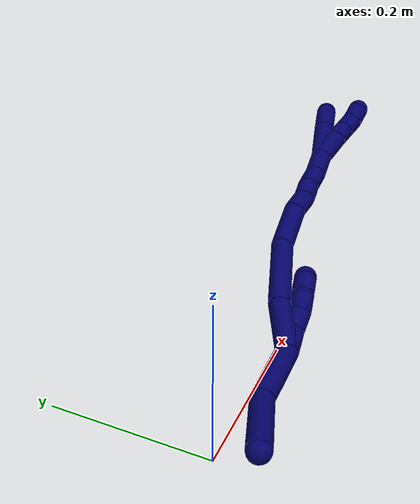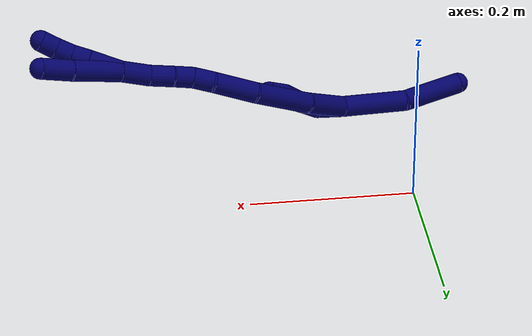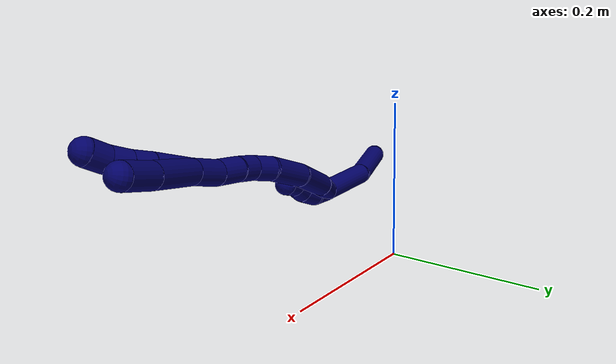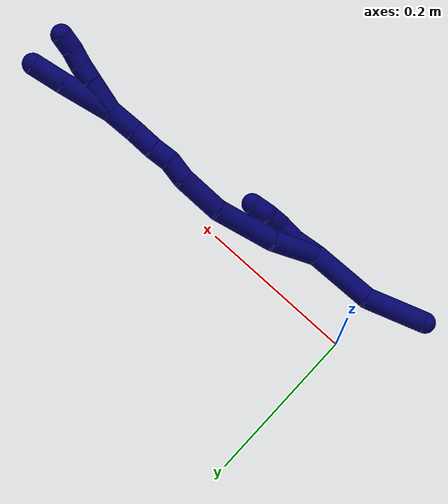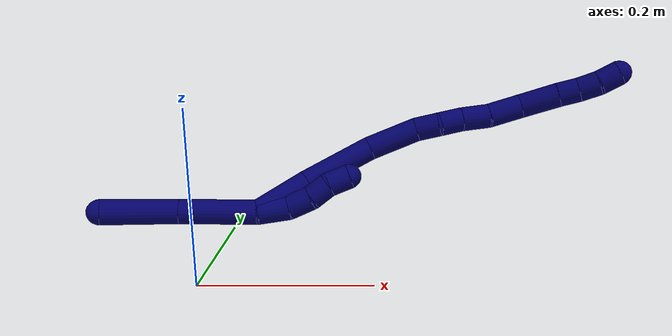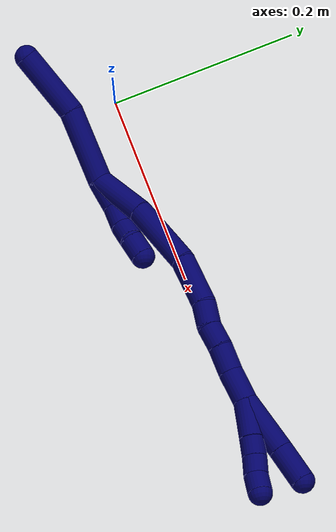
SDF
<sdf version="1.7">
 <world name="default">
  <model name="7">
   <static>0</static>
   <link name="7">
    <collision name="collision-cylinder-e_1_2_8">
     <pose>-0.015561 0.003022 -0.035592 -3.05689 -0.410855 2.7403</pose>
     <geometry><cylinder><radius>0.0125</radius><length>0.077925</length></cylinder></geometry>
     <surface>
      <friction><ode><mu>1.16</mu><mu2>1.16</mu2><slip1>0</slip1><slip2>0</slip2></ode></friction>
      <contact><ode><kp>1e+06</kp><kd>1</kd><max_vel>0</max_vel><min_depth>0.001</min_depth></ode></contact>
     </surface>
    </collision>
    <visual name="visual-cylinder-e_1_2_8">
     <pose>-0.015561 0.003022 -0.035592 -3.05689 -0.410855 2.7403</pose>
     <geometry><cylinder><radius>0.0125</radius><length>0.077925</length></cylinder></geometry>
     <material><ambient>0.003922 0 0.403922 1</ambient></material>
    </visual>
    <collision name="collision-cylinder-e_2_8_6">
     <pose>-0.053318 0.002907 -0.099401 3.03086 -0.663536 -2.82258</pose>
     <geometry><cylinder><radius>0.0125</radius><length>0.072075</length></cylinder></geometry>
     <surface>
      <friction><ode><mu>1.16</mu><mu2>1.16</mu2><slip1>0</slip1><slip2>0</slip2></ode></friction>
      <contact><ode><kp>1e+06</kp><kd>1</kd><max_vel>0</max_vel><min_depth>0.001</min_depth></ode></contact>
     </surface>
    </collision>
    <visual name="visual-cylinder-e_2_8_6">
     <pose>-0.053318 0.002907 -0.099401 3.03086 -0.663536 -2.82258</pose>
     <geometry><cylinder><radius>0.0125</radius><length>0.072075</length></cylinder></geometry>
     <material><ambient>0.003922 0 0.403922 1</ambient></material>
    </visual>
    <collision name="collision-cylinder-e_1_2_9">
     <pose>0.006109 0.001605 0.014435 -0.110713 0.398136 -0.022357</pose>
     <geometry><cylinder><radius>0.0125</radius><length>0.031512</length></cylinder></geometry>
     <surface>
      <friction><ode><mu>1.16</mu><mu2>1.16</mu2><slip1>0</slip1><slip2>0</slip2></ode></friction>
      <contact><ode><kp>1e+06</kp><kd>1</kd><max_vel>0</max_vel><min_depth>0.001</min_depth></ode></contact>
     </surface>
    </collision>
    <visual name="visual-cylinder-e_1_2_9">
     <pose>0.006109 0.001605 0.014435 -0.110713 0.398136 -0.022357</pose>
     <geometry><cylinder><radius>0.0125</radius><length>0.031512</length></cylinder></geometry>
     <material><ambient>0.003922 0 0.403922 1</ambient></material>
    </visual>
    <collision name="collision-cylinder-e_2_9_10">
     <pose>0.013101 0.00593 0.041145 -0.218139 0.070176 -0.007688</pose>
     <geometry><cylinder><radius>0.0125</radius><length>0.02521</length></cylinder></geometry>
     <surface>
      <friction><ode><mu>1.16</mu><mu2>1.16</mu2><slip1>0</slip1><slip2>0</slip2></ode></friction>
      <contact><ode><kp>1e+06</kp><kd>1</kd><max_vel>0</max_vel><min_depth>0.001</min_depth></ode></contact>
     </surface>
    </collision>
    <visual name="visual-cylinder-e_2_9_10">
     <pose>0.013101 0.00593 0.041145 -0.218139 0.070176 -0.007688</pose>
     <geometry><cylinder><radius>0.0125</radius><length>0.02521</length></cylinder></geometry>
     <material><ambient>0.003922 0 0.403922 1</ambient></material>
    </visual>
    <collision name="collision-cylinder-e_3_10_11">
     <pose>0.01397 0.013317 0.062802 -0.461463 -0.001438 0.000338</pose>
     <geometry><cylinder><radius>0.0125</radius><length>0.020954</length></cylinder></geometry>
     <surface>
      <friction><ode><mu>1.16</mu><mu2>1.16</mu2><slip1>0</slip1><slip2>0</slip2></ode></friction>
      <contact><ode><kp>1e+06</kp><kd>1</kd><max_vel>0</max_vel><min_depth>0.001</min_depth></ode></contact>
     </surface>
    </collision>
    <visual name="visual-cylinder-e_3_10_11">
     <pose>0.01397 0.013317 0.062802 -0.461463 -0.001438 0.000338</pose>
     <geometry><cylinder><radius>0.0125</radius><length>0.020954</length></cylinder></geometry>
     <material><ambient>0.003922 0 0.403922 1</ambient></material>
    </visual>
    <collision name="collision-cylinder-e_4_11_5">
     <pose>0.016741 0.021252 0.082486 -0.30733 0.252255 -0.039274</pose>
     <geometry><cylinder><radius>0.0125</radius><length>0.022324</length></cylinder></geometry>
     <surface>
      <friction><ode><mu>1.16</mu><mu2>1.16</mu2><slip1>0</slip1><slip2>0</slip2></ode></friction>
      <contact><ode><kp>1e+06</kp><kd>1</kd><max_vel>0</max_vel><min_depth>0.001</min_depth></ode></contact>
     </surface>
    </collision>
    <visual name="visual-cylinder-e_4_11_5">
     <pose>0.016741 0.021252 0.082486 -0.30733 0.252255 -0.039274</pose>
     <geometry><cylinder><radius>0.0125</radius><length>0.022324</length></cylinder></geometry>
     <material><ambient>0.003922 0 0.403922 1</ambient></material>
    </visual>
    <collision name="collision-cylinder-e_1_2_12">
     <pose>0.009488 0.015807 0.022715 -0.607967 0.330282 -0.104469</pose>
     <geometry><cylinder><radius>0.0125</radius><length>0.05851</length></cylinder></geometry>
     <surface>
      <friction><ode><mu>1.16</mu><mu2>1.16</mu2><slip1>0</slip1><slip2>0</slip2></ode></friction>
      <contact><ode><kp>1e+06</kp><kd>1</kd><max_vel>0</max_vel><min_depth>0.001</min_depth></ode></contact>
     </surface>
    </collision>
    <visual name="visual-cylinder-e_1_2_12">
     <pose>0.009488 0.015807 0.022715 -0.607967 0.330282 -0.104469</pose>
     <geometry><cylinder><radius>0.0125</radius><length>0.05851</length></cylinder></geometry>
     <material><ambient>0.003922 0 0.403922 1</ambient></material>
    </visual>
    <collision name="collision-cylinder-e_2_12_13">
     <pose>0.027935 0.047567 0.07865 -0.447672 0.238489 -0.054537</pose>
     <geometry><cylinder><radius>0.0125</radius><length>0.07585</length></cylinder></geometry>
     <surface>
      <friction><ode><mu>1.16</mu><mu2>1.16</mu2><slip1>0</slip1><slip2>0</slip2></ode></friction>
      <contact><ode><kp>1e+06</kp><kd>1</kd><max_vel>0</max_vel><min_depth>0.001</min_depth></ode></contact>
     </surface>
    </collision>
    <visual name="visual-cylinder-e_2_12_13">
     <pose>0.027935 0.047567 0.07865 -0.447672 0.238489 -0.054537</pose>
     <geometry><cylinder><radius>0.0125</radius><length>0.07585</length></cylinder></geometry>
     <material><ambient>0.003922 0 0.403922 1</ambient></material>
    </visual>
    <collision name="collision-cylinder-e_3_13_14">
     <pose>0.040699 0.069464 0.137733 -0.225947 0.142426 -0.016186</pose>
     <geometry><cylinder><radius>0.0125</radius><length>0.053618</length></cylinder></geometry>
     <surface>
      <friction><ode><mu>1.16</mu><mu2>1.16</mu2><slip1>0</slip1><slip2>0</slip2></ode></friction>
      <contact><ode><kp>1e+06</kp><kd>1</kd><max_vel>0</max_vel><min_depth>0.001</min_depth></ode></contact>
     </surface>
    </collision>
    <visual name="visual-cylinder-e_3_13_14">
     <pose>0.040699 0.069464 0.137733 -0.225947 0.142426 -0.016186</pose>
     <geometry><cylinder><radius>0.0125</radius><length>0.053618</length></cylinder></geometry>
     <material><ambient>0.003922 0 0.403922 1</ambient></material>
    </visual>
    <collision name="collision-cylinder-e_4_14_15">
     <pose>0.04575 0.075178 0.175968 0.018618 0.100287 0.000934</pose>
     <geometry><cylinder><radius>0.0125</radius><length>0.024873</length></cylinder></geometry>
     <surface>
      <friction><ode><mu>1.16</mu><mu2>1.16</mu2><slip1>0</slip1><slip2>0</slip2></ode></friction>
      <contact><ode><kp>1e+06</kp><kd>1</kd><max_vel>0</max_vel><min_depth>0.001</min_depth></ode></contact>
     </surface>
    </collision>
    <visual name="visual-cylinder-e_4_14_15">
     <pose>0.04575 0.075178 0.175968 0.018618 0.100287 0.000934</pose>
     <geometry><cylinder><radius>0.0125</radius><length>0.024873</length></cylinder></geometry>
     <material><ambient>0.003922 0 0.403922 1</ambient></material>
    </visual>
    <collision name="collision-cylinder-e_5_15_16">
     <pose>0.050641 0.076646 0.199499 -0.151041 0.31242 -0.023832</pose>
     <geometry><cylinder><radius>0.0125</radius><length>0.023723</length></cylinder></geometry>
     <surface>
      <friction><ode><mu>1.16</mu><mu2>1.16</mu2><slip1>0</slip1><slip2>0</slip2></ode></friction>
      <contact><ode><kp>1e+06</kp><kd>1</kd><max_vel>0</max_vel><min_depth>0.001</min_depth></ode></contact>
     </surface>
    </collision>
    <visual name="visual-cylinder-e_5_15_16">
     <pose>0.050641 0.076646 0.199499 -0.151041 0.31242 -0.023832</pose>
     <geometry><cylinder><radius>0.0125</radius><length>0.023723</length></cylinder></geometry>
     <material><ambient>0.003922 0 0.403922 1</ambient></material>
    </visual>
    <collision name="collision-cylinder-e_6_16_17">
     <pose>0.058455 0.07858 0.224274 -0.017243 0.297032 -0.00258</pose>
     <geometry><cylinder><radius>0.0125</radius><length>0.028484</length></cylinder></geometry>
     <surface>
      <friction><ode><mu>1.16</mu><mu2>1.16</mu2><slip1>0</slip1><slip2>0</slip2></ode></friction>
      <contact><ode><kp>1e+06</kp><kd>1</kd><max_vel>0</max_vel><min_depth>0.001</min_depth></ode></contact>
     </surface>
    </collision>
    <visual name="visual-cylinder-e_6_16_17">
     <pose>0.058455 0.07858 0.224274 -0.017243 0.297032 -0.00258</pose>
     <geometry><cylinder><radius>0.0125</radius><length>0.028484</length></cylinder></geometry>
     <material><ambient>0.003922 0 0.403922 1</ambient></material>
    </visual>
    <collision name="collision-cylinder-e_7_17_1">
     <pose>0.066615 0.08183 0.25463 -0.178236 0.230536 -0.02069</pose>
     <geometry><cylinder><radius>0.0125</radius><length>0.034942</length></cylinder></geometry>
     <surface>
      <friction><ode><mu>1.16</mu><mu2>1.16</mu2><slip1>0</slip1><slip2>0</slip2></ode></friction>
      <contact><ode><kp>1e+06</kp><kd>1</kd><max_vel>0</max_vel><min_depth>0.001</min_depth></ode></contact>
     </surface>
    </collision>
    <visual name="visual-cylinder-e_7_17_1">
     <pose>0.066615 0.08183 0.25463 -0.178236 0.230536 -0.02069</pose>
     <geometry><cylinder><radius>0.0125</radius><length>0.034942</length></cylinder></geometry>
     <material><ambient>0.003922 0 0.403922 1</ambient></material>
    </visual>
    <collision name="collision-cylinder-e_1_1_18">
     <pose>0.070516 0.084816 0.291113 0.001476 -0.004637 -3e-06</pose>
     <geometry><cylinder><radius>0.0125</radius><length>0.039489</length></cylinder></geometry>
     <surface>
      <friction><ode><mu>1.16</mu><mu2>1.16</mu2><slip1>0</slip1><slip2>0</slip2></ode></friction>
      <contact><ode><kp>1e+06</kp><kd>1</kd><max_vel>0</max_vel><min_depth>0.001</min_depth></ode></contact>
     </surface>
    </collision>
    <visual name="visual-cylinder-e_1_1_18">
     <pose>0.070516 0.084816 0.291113 0.001476 -0.004637 -3e-06</pose>
     <geometry><cylinder><radius>0.0125</radius><length>0.039489</length></cylinder></geometry>
     <material><ambient>0.003922 0 0.403922 1</ambient></material>
    </visual>
    <collision name="collision-cylinder-e_2_18_19">
     <pose>0.07065 0.084337 0.320946 0.044629 0.022329 0.000498</pose>
     <geometry><cylinder><radius>0.0125</radius><length>0.020202</length></cylinder></geometry>
     <surface>
      <friction><ode><mu>1.16</mu><mu2>1.16</mu2><slip1>0</slip1><slip2>0</slip2></ode></friction>
      <contact><ode><kp>1e+06</kp><kd>1</kd><max_vel>0</max_vel><min_depth>0.001</min_depth></ode></contact>
     </surface>
    </collision>
    <visual name="visual-cylinder-e_2_18_19">
     <pose>0.07065 0.084337 0.320946 0.044629 0.022329 0.000498</pose>
     <geometry><cylinder><radius>0.0125</radius><length>0.020202</length></cylinder></geometry>
     <material><ambient>0.003922 0 0.403922 1</ambient></material>
    </visual>
    <collision name="collision-cylinder-e_3_19_20">
     <pose>0.069977 0.083688 0.341098 0.019701 -0.088992 -0.000877</pose>
     <geometry><cylinder><radius>0.0125</radius><length>0.020212</length></cylinder></geometry>
     <surface>
      <friction><ode><mu>1.16</mu><mu2>1.16</mu2><slip1>0</slip1><slip2>0</slip2></ode></friction>
      <contact><ode><kp>1e+06</kp><kd>1</kd><max_vel>0</max_vel><min_depth>0.001</min_depth></ode></contact>
     </surface>
    </collision>
    <visual name="visual-cylinder-e_3_19_20">
     <pose>0.069977 0.083688 0.341098 0.019701 -0.088992 -0.000877</pose>
     <geometry><cylinder><radius>0.0125</radius><length>0.020212</length></cylinder></geometry>
     <material><ambient>0.003922 0 0.403922 1</ambient></material>
    </visual>
    <collision name="collision-cylinder-e_4_20_4">
     <pose>0.068232 0.085252 0.361018 -0.176973 -0.084427 0.007495</pose>
     <geometry><cylinder><radius>0.0125</radius><length>0.020097</length></cylinder></geometry>
     <surface>
      <friction><ode><mu>1.16</mu><mu2>1.16</mu2><slip1>0</slip1><slip2>0</slip2></ode></friction>
      <contact><ode><kp>1e+06</kp><kd>1</kd><max_vel>0</max_vel><min_depth>0.001</min_depth></ode></contact>
     </surface>
    </collision>
    <visual name="visual-cylinder-e_4_20_4">
     <pose>0.068232 0.085252 0.361018 -0.176973 -0.084427 0.007495</pose>
     <geometry><cylinder><radius>0.0125</radius><length>0.020097</length></cylinder></geometry>
     <material><ambient>0.003922 0 0.403922 1</ambient></material>
    </visual>
    <collision name="collision-cylinder-e_1_1_21">
     <pose>0.081707 0.092506 0.298711 -0.273171 0.372638 -0.051805</pose>
     <geometry><cylinder><radius>0.0125</radius><length>0.060974</length></cylinder></geometry>
     <surface>
      <friction><ode><mu>1.16</mu><mu2>1.16</mu2><slip1>0</slip1><slip2>0</slip2></ode></friction>
      <contact><ode><kp>1e+06</kp><kd>1</kd><max_vel>0</max_vel><min_depth>0.001</min_depth></ode></contact>
     </surface>
    </collision>
    <visual name="visual-cylinder-e_1_1_21">
     <pose>0.081707 0.092506 0.298711 -0.273171 0.372638 -0.051805</pose>
     <geometry><cylinder><radius>0.0125</radius><length>0.060974</length></cylinder></geometry>
     <material><ambient>0.003922 0 0.403922 1</ambient></material>
    </visual>
    <collision name="collision-cylinder-e_2_21_3">
     <pose>0.099075 0.10526 0.343815 -0.27928 0.327042 -0.046373</pose>
     <geometry><cylinder><radius>0.0125</radius><length>0.039026</length></cylinder></geometry>
     <surface>
      <friction><ode><mu>1.16</mu><mu2>1.16</mu2><slip1>0</slip1><slip2>0</slip2></ode></friction>
      <contact><ode><kp>1e+06</kp><kd>1</kd><max_vel>0</max_vel><min_depth>0.001</min_depth></ode></contact>
     </surface>
    </collision>
    <visual name="visual-cylinder-e_2_21_3">
     <pose>0.099075 0.10526 0.343815 -0.27928 0.327042 -0.046373</pose>
     <geometry><cylinder><radius>0.0125</radius><length>0.039026</length></cylinder></geometry>
     <material><ambient>0.003922 0 0.403922 1</ambient></material>
    </visual>
    <collision name="collision-sphere-3">
     <pose>0.105343 0.110354 0.361578 0 -0 0</pose>
     <geometry><sphere><radius>0.0125</radius></sphere></geometry>
     <surface>
      <friction><ode><mu>1.16</mu><mu2>1.16</mu2><slip1>0</slip1><slip2>0</slip2></ode></friction>
      <contact><ode><kp>1e+06</kp><kd>1</kd><max_vel>0</max_vel><min_depth>0.001</min_depth></ode></contact>
     </surface>
    </collision>
    <visual name="visual-sphere-3">
     <pose>0.105343 0.110354 0.361578 0 -0 0</pose>
     <geometry><sphere><radius>0.0125</radius></sphere></geometry>
     <material><ambient>0.003922 0 0.403922 1</ambient></material>
    </visual>
    <collision name="collision-sphere-21">
     <pose>0.092806 0.100167 0.326053 0 -0 0</pose>
     <geometry><sphere><radius>0.0125</radius></sphere></geometry>
     <surface>
      <friction><ode><mu>1.16</mu><mu2>1.16</mu2><slip1>0</slip1><slip2>0</slip2></ode></friction>
      <contact><ode><kp>1e+06</kp><kd>1</kd><max_vel>0</max_vel><min_depth>0.001</min_depth></ode></contact>
     </surface>
    </collision>
    <visual name="visual-sphere-21">
     <pose>0.092806 0.100167 0.326053 0 -0 0</pose>
     <geometry><sphere><radius>0.0125</radius></sphere></geometry>
     <material><ambient>0.003922 0 0.403922 1</ambient></material>
    </visual>
    <collision name="collision-sphere-4">
     <pose>0.067384 0.087015 0.370875 0 -0 0</pose>
     <geometry><sphere><radius>0.0125</radius></sphere></geometry>
     <surface>
      <friction><ode><mu>1.16</mu><mu2>1.16</mu2><slip1>0</slip1><slip2>0</slip2></ode></friction>
      <contact><ode><kp>1e+06</kp><kd>1</kd><max_vel>0</max_vel><min_depth>0.001</min_depth></ode></contact>
     </surface>
    </collision>
    <visual name="visual-sphere-4">
     <pose>0.067384 0.087015 0.370875 0 -0 0</pose>
     <geometry><sphere><radius>0.0125</radius></sphere></geometry>
     <material><ambient>0.003922 0 0.403922 1</ambient></material>
    </visual>
    <collision name="collision-sphere-20">
     <pose>0.069079 0.08349 0.351162 0 -0 0</pose>
     <geometry><sphere><radius>0.0125</radius></sphere></geometry>
     <surface>
      <friction><ode><mu>1.16</mu><mu2>1.16</mu2><slip1>0</slip1><slip2>0</slip2></ode></friction>
      <contact><ode><kp>1e+06</kp><kd>1</kd><max_vel>0</max_vel><min_depth>0.001</min_depth></ode></contact>
     </surface>
    </collision>
    <visual name="visual-sphere-20">
     <pose>0.069079 0.08349 0.351162 0 -0 0</pose>
     <geometry><sphere><radius>0.0125</radius></sphere></geometry>
     <material><ambient>0.003922 0 0.403922 1</ambient></material>
    </visual>
    <collision name="collision-sphere-11">
     <pose>0.013955 0.017982 0.072183 0 -0 0</pose>
     <geometry><sphere><radius>0.0125</radius></sphere></geometry>
     <surface>
      <friction><ode><mu>1.16</mu><mu2>1.16</mu2><slip1>0</slip1><slip2>0</slip2></ode></friction>
      <contact><ode><kp>1e+06</kp><kd>1</kd><max_vel>0</max_vel><min_depth>0.001</min_depth></ode></contact>
     </surface>
    </collision>
    <visual name="visual-sphere-11">
     <pose>0.013955 0.017982 0.072183 0 -0 0</pose>
     <geometry><sphere><radius>0.0125</radius></sphere></geometry>
     <material><ambient>0.003922 0 0.403922 1</ambient></material>
    </visual>
    <collision name="collision-sphere-10">
     <pose>0.013985 0.008652 0.053421 0 -0 0</pose>
     <geometry><sphere><radius>0.0125</radius></sphere></geometry>
     <surface>
      <friction><ode><mu>1.16</mu><mu2>1.16</mu2><slip1>0</slip1><slip2>0</slip2></ode></friction>
      <contact><ode><kp>1e+06</kp><kd>1</kd><max_vel>0</max_vel><min_depth>0.001</min_depth></ode></contact>
     </surface>
    </collision>
    <visual name="visual-sphere-10">
     <pose>0.013985 0.008652 0.053421 0 -0 0</pose>
     <geometry><sphere><radius>0.0125</radius></sphere></geometry>
     <material><ambient>0.003922 0 0.403922 1</ambient></material>
    </visual>
    <collision name="collision-sphere-6">
     <pose>-0.075514 -0.00023 -0.127618 0 -0 0</pose>
     <geometry><sphere><radius>0.0125</radius></sphere></geometry>
     <surface>
      <friction><ode><mu>1.16</mu><mu2>1.16</mu2><slip1>0</slip1><slip2>0</slip2></ode></friction>
      <contact><ode><kp>1e+06</kp><kd>1</kd><max_vel>0</max_vel><min_depth>0.001</min_depth></ode></contact>
     </surface>
    </collision>
    <visual name="visual-sphere-6">
     <pose>-0.075514 -0.00023 -0.127618 0 -0 0</pose>
     <geometry><sphere><radius>0.0125</radius></sphere></geometry>
     <material><ambient>0.003922 0 0.403922 1</ambient></material>
    </visual>
    <collision name="collision-sphere-9">
     <pose>0.012217 0.003209 0.028869 0 -0 0</pose>
     <geometry><sphere><radius>0.0125</radius></sphere></geometry>
     <surface>
      <friction><ode><mu>1.16</mu><mu2>1.16</mu2><slip1>0</slip1><slip2>0</slip2></ode></friction>
      <contact><ode><kp>1e+06</kp><kd>1</kd><max_vel>0</max_vel><min_depth>0.001</min_depth></ode></contact>
     </surface>
    </collision>
    <visual name="visual-sphere-9">
     <pose>0.012217 0.003209 0.028869 0 -0 0</pose>
     <geometry><sphere><radius>0.0125</radius></sphere></geometry>
     <material><ambient>0.003922 0 0.403922 1</ambient></material>
    </visual>
    <collision name="collision-sphere-2">
     <geometry><sphere><radius>0.0125</radius></sphere></geometry>
     <surface>
      <friction><ode><mu>1.16</mu><mu2>1.16</mu2><slip1>0</slip1><slip2>0</slip2></ode></friction>
      <contact><ode><kp>1e+06</kp><kd>1</kd><max_vel>0</max_vel><min_depth>0.001</min_depth></ode></contact>
     </surface>
    </collision>
    <visual name="visual-sphere-2">
     <geometry><sphere><radius>0.0125</radius></sphere></geometry>
     <material><ambient>0.003922 0 0.403922 1</ambient></material>
    </visual>
    <collision name="collision-sphere-19">
     <pose>0.070875 0.083886 0.331034 0 -0 0</pose>
     <geometry><sphere><radius>0.0125</radius></sphere></geometry>
     <surface>
      <friction><ode><mu>1.16</mu><mu2>1.16</mu2><slip1>0</slip1><slip2>0</slip2></ode></friction>
      <contact><ode><kp>1e+06</kp><kd>1</kd><max_vel>0</max_vel><min_depth>0.001</min_depth></ode></contact>
     </surface>
    </collision>
    <visual name="visual-sphere-19">
     <pose>0.070875 0.083886 0.331034 0 -0 0</pose>
     <geometry><sphere><radius>0.0125</radius></sphere></geometry>
     <material><ambient>0.003922 0 0.403922 1</ambient></material>
    </visual>
    <collision name="collision-sphere-8">
     <pose>-0.031123 0.006044 -0.071184 0 -0 0</pose>
     <geometry><sphere><radius>0.0125</radius></sphere></geometry>
     <surface>
      <friction><ode><mu>1.16</mu><mu2>1.16</mu2><slip1>0</slip1><slip2>0</slip2></ode></friction>
      <contact><ode><kp>1e+06</kp><kd>1</kd><max_vel>0</max_vel><min_depth>0.001</min_depth></ode></contact>
     </surface>
    </collision>
    <visual name="visual-sphere-8">
     <pose>-0.031123 0.006044 -0.071184 0 -0 0</pose>
     <geometry><sphere><radius>0.0125</radius></sphere></geometry>
     <material><ambient>0.003922 0 0.403922 1</ambient></material>
    </visual>
    <collision name="collision-sphere-5">
     <pose>0.019526 0.024521 0.092788 0 -0 0</pose>
     <geometry><sphere><radius>0.0125</radius></sphere></geometry>
     <surface>
      <friction><ode><mu>1.16</mu><mu2>1.16</mu2><slip1>0</slip1><slip2>0</slip2></ode></friction>
      <contact><ode><kp>1e+06</kp><kd>1</kd><max_vel>0</max_vel><min_depth>0.001</min_depth></ode></contact>
     </surface>
    </collision>
    <visual name="visual-sphere-5">
     <pose>0.019526 0.024521 0.092788 0 -0 0</pose>
     <geometry><sphere><radius>0.0125</radius></sphere></geometry>
     <material><ambient>0.003922 0 0.403922 1</ambient></material>
    </visual>
    <collision name="collision-sphere-12">
     <pose>0.018975 0.031615 0.04543 0 -0 0</pose>
     <geometry><sphere><radius>0.0125</radius></sphere></geometry>
     <surface>
      <friction><ode><mu>1.16</mu><mu2>1.16</mu2><slip1>0</slip1><slip2>0</slip2></ode></friction>
      <contact><ode><kp>1e+06</kp><kd>1</kd><max_vel>0</max_vel><min_depth>0.001</min_depth></ode></contact>
     </surface>
    </collision>
    <visual name="visual-sphere-12">
     <pose>0.018975 0.031615 0.04543 0 -0 0</pose>
     <geometry><sphere><radius>0.0125</radius></sphere></geometry>
     <material><ambient>0.003922 0 0.403922 1</ambient></material>
    </visual>
    <collision name="collision-sphere-13">
     <pose>0.036894 0.063518 0.111871 0 -0 0</pose>
     <geometry><sphere><radius>0.0125</radius></sphere></geometry>
     <surface>
      <friction><ode><mu>1.16</mu><mu2>1.16</mu2><slip1>0</slip1><slip2>0</slip2></ode></friction>
      <contact><ode><kp>1e+06</kp><kd>1</kd><max_vel>0</max_vel><min_depth>0.001</min_depth></ode></contact>
     </surface>
    </collision>
    <visual name="visual-sphere-13">
     <pose>0.036894 0.063518 0.111871 0 -0 0</pose>
     <geometry><sphere><radius>0.0125</radius></sphere></geometry>
     <material><ambient>0.003922 0 0.403922 1</ambient></material>
    </visual>
    <collision name="collision-sphere-14">
     <pose>0.044505 0.075409 0.163596 0 -0 0</pose>
     <geometry><sphere><radius>0.0125</radius></sphere></geometry>
     <surface>
      <friction><ode><mu>1.16</mu><mu2>1.16</mu2><slip1>0</slip1><slip2>0</slip2></ode></friction>
      <contact><ode><kp>1e+06</kp><kd>1</kd><max_vel>0</max_vel><min_depth>0.001</min_depth></ode></contact>
     </surface>
    </collision>
    <visual name="visual-sphere-14">
     <pose>0.044505 0.075409 0.163596 0 -0 0</pose>
     <geometry><sphere><radius>0.0125</radius></sphere></geometry>
     <material><ambient>0.003922 0 0.403922 1</ambient></material>
    </visual>
    <collision name="collision-sphere-15">
     <pose>0.046995 0.074948 0.18834 0 -0 0</pose>
     <geometry><sphere><radius>0.0125</radius></sphere></geometry>
     <surface>
      <friction><ode><mu>1.16</mu><mu2>1.16</mu2><slip1>0</slip1><slip2>0</slip2></ode></friction>
      <contact><ode><kp>1e+06</kp><kd>1</kd><max_vel>0</max_vel><min_depth>0.001</min_depth></ode></contact>
     </surface>
    </collision>
    <visual name="visual-sphere-15">
     <pose>0.046995 0.074948 0.18834 0 -0 0</pose>
     <geometry><sphere><radius>0.0125</radius></sphere></geometry>
     <material><ambient>0.003922 0 0.403922 1</ambient></material>
    </visual>
    <collision name="collision-sphere-16">
     <pose>0.054286 0.078345 0.210658 0 -0 0</pose>
     <geometry><sphere><radius>0.0125</radius></sphere></geometry>
     <surface>
      <friction><ode><mu>1.16</mu><mu2>1.16</mu2><slip1>0</slip1><slip2>0</slip2></ode></friction>
      <contact><ode><kp>1e+06</kp><kd>1</kd><max_vel>0</max_vel><min_depth>0.001</min_depth></ode></contact>
     </surface>
    </collision>
    <visual name="visual-sphere-16">
     <pose>0.054286 0.078345 0.210658 0 -0 0</pose>
     <geometry><sphere><radius>0.0125</radius></sphere></geometry>
     <material><ambient>0.003922 0 0.403922 1</ambient></material>
    </visual>
    <collision name="collision-sphere-17">
     <pose>0.062623 0.078814 0.23789 0 -0 0</pose>
     <geometry><sphere><radius>0.0125</radius></sphere></geometry>
     <surface>
      <friction><ode><mu>1.16</mu><mu2>1.16</mu2><slip1>0</slip1><slip2>0</slip2></ode></friction>
      <contact><ode><kp>1e+06</kp><kd>1</kd><max_vel>0</max_vel><min_depth>0.001</min_depth></ode></contact>
     </surface>
    </collision>
    <visual name="visual-sphere-17">
     <pose>0.062623 0.078814 0.23789 0 -0 0</pose>
     <geometry><sphere><radius>0.0125</radius></sphere></geometry>
     <material><ambient>0.003922 0 0.403922 1</ambient></material>
    </visual>
    <collision name="collision-sphere-1">
     <pose>0.070607 0.084845 0.271369 0 -0 0</pose>
     <geometry><sphere><radius>0.0125</radius></sphere></geometry>
     <surface>
      <friction><ode><mu>1.16</mu><mu2>1.16</mu2><slip1>0</slip1><slip2>0</slip2></ode></friction>
      <contact><ode><kp>1e+06</kp><kd>1</kd><max_vel>0</max_vel><min_depth>0.001</min_depth></ode></contact>
     </surface>
    </collision>
    <visual name="visual-sphere-1">
     <pose>0.070607 0.084845 0.271369 0 -0 0</pose>
     <geometry><sphere><radius>0.0125</radius></sphere></geometry>
     <material><ambient>0.003922 0 0.403922 1</ambient></material>
    </visual>
    <collision name="collision-sphere-18">
     <pose>0.070424 0.084787 0.310857 0 -0 0</pose>
     <geometry><sphere><radius>0.0125</radius></sphere></geometry>
     <surface>
      <friction><ode><mu>1.16</mu><mu2>1.16</mu2><slip1>0</slip1><slip2>0</slip2></ode></friction>
      <contact><ode><kp>1e+06</kp><kd>1</kd><max_vel>0</max_vel><min_depth>0.001</min_depth></ode></contact>
     </surface>
    </collision>
    <visual name="visual-sphere-18">
     <pose>0.070424 0.084787 0.310857 0 -0 0</pose>
     <geometry><sphere><radius>0.0125</radius></sphere></geometry>
     <material><ambient>0.003922 0 0.403922 1</ambient></material>
    </visual>
    <inertial>
     <pose>0.03089 0.048864 0.130062 0 -0 0</pose>
     <mass>0.75</mass>
     <inertia><ixx>7.2e-05</ixx><ixy>0</ixy><ixz>0</ixz><iyy>0.000209</iyy><iyz>0</iyz><izz>-2e-06</izz></inertia>
    </inertial>
   </link>
   <pose>0.082016 -0.047455 0.101573 1.13498 0.707979 1.05786</pose>
  </model>
 </world>
</sdf>
